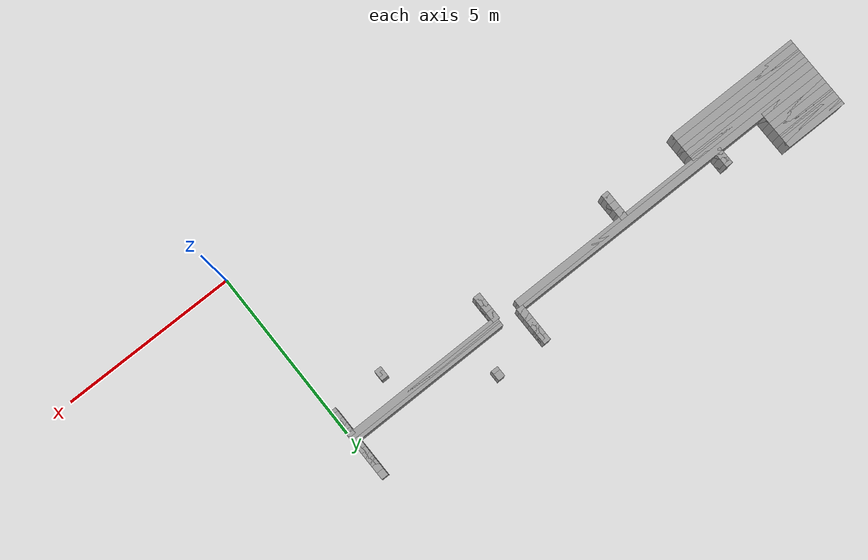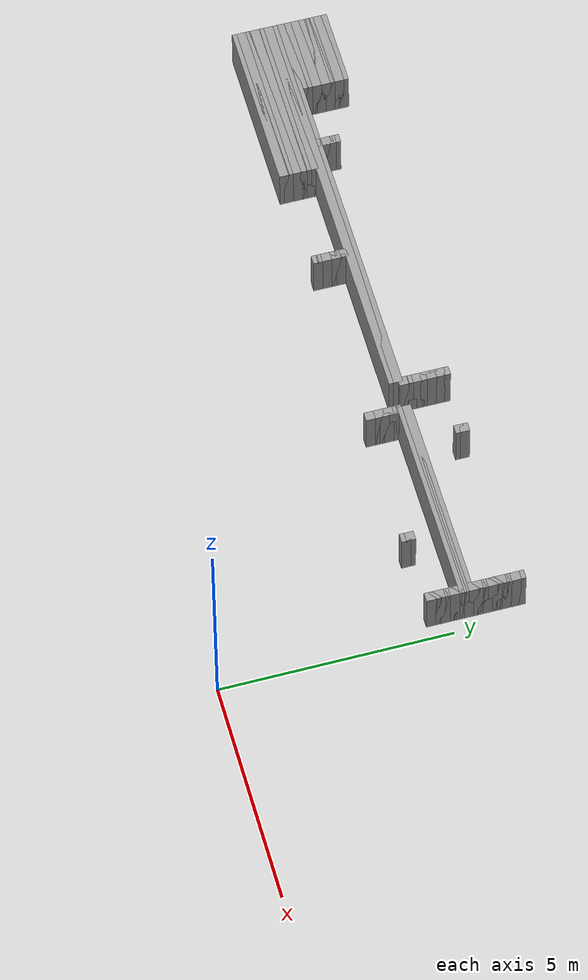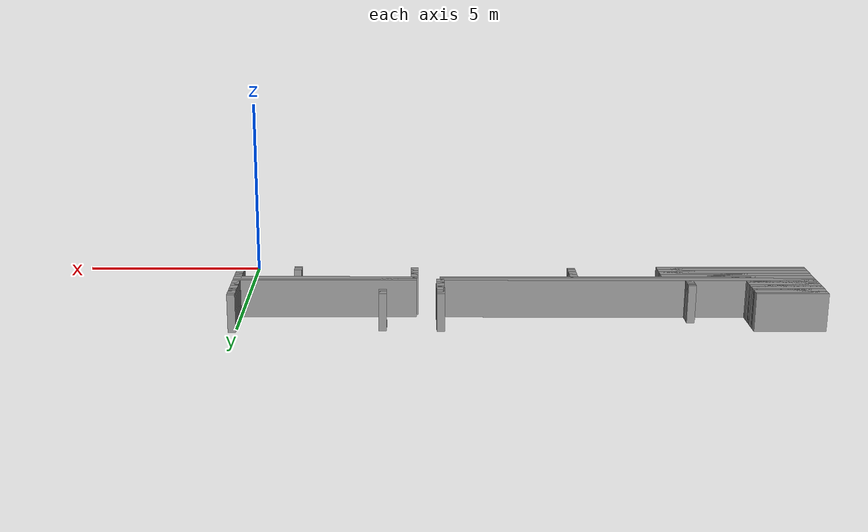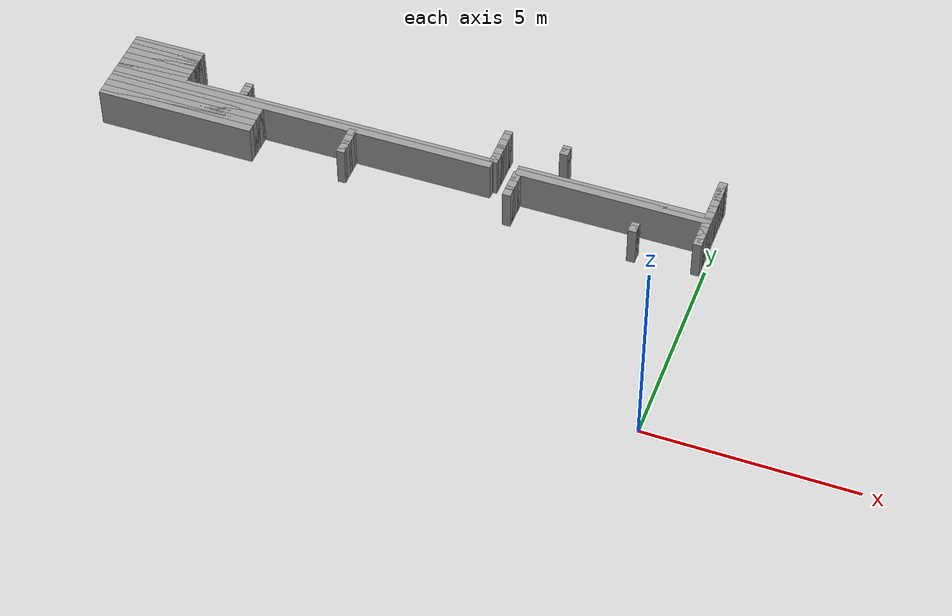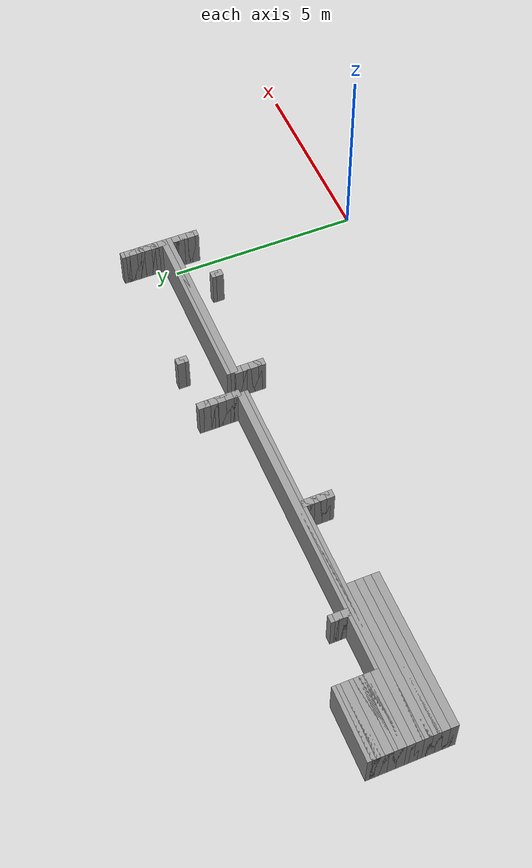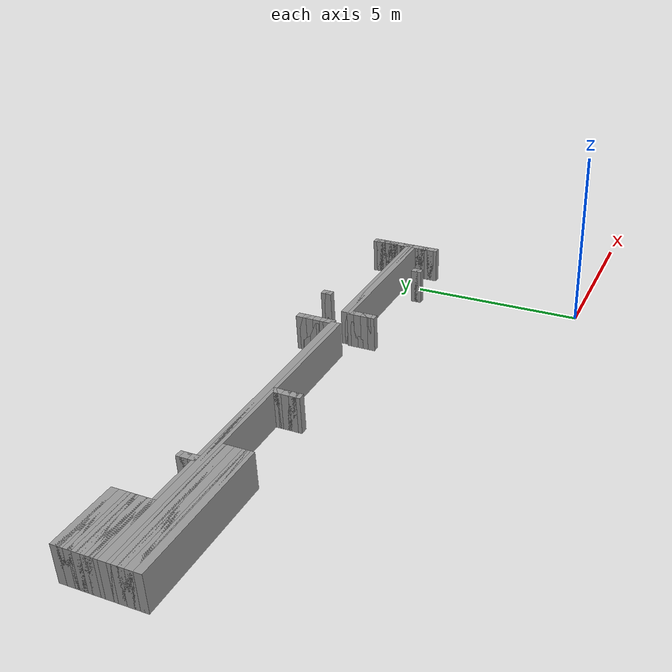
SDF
<sdf version="1.6">
 <world name="GridMap">
  <model name="GridMap">
   <link name="Wall_(16.0,44.0)">
    <collision name="Wall_(16.0,44.0)_Collision">
     <geometry><box><size>0.2 0.2 1.0</size></box></geometry>
     <pose>-1.6 4.4 0.5 0 -0 0</pose>
    </collision>
    <visual name="Wall_(16.0,44.0)_Visual">
     <geometry><box><size>0.2 0.2 1.0</size></box></geometry>
     <pose>-1.6 4.4 0.5 0 -0 0</pose>
     <material>
      <script><uri>file://media/materials/scripts/gazebo.material</uri><name>Gazebo/Grey</name></script>
      <ambient>1 1 1 1</ambient>
     </material>
     <meta><layer>0</layer></meta>
    </visual>
    <pose>0 0 0.5 0 -0 0</pose>
   </link>
   <link name="Wall_(129.5,44.0)">
    <collision name="Wall_(129.5,44.0)_Collision">
     <geometry><box><size>3.9000000000000004 0.2 1.0</size></box></geometry>
     <pose>-12.950000000000001 4.4 0.5 0 -0 0</pose>
    </collision>
    <visual name="Wall_(129.5,44.0)_Visual">
     <geometry><box><size>3.9000000000000004 0.2 1.0</size></box></geometry>
     <pose>-12.950000000000001 4.4 0.5 0 -0 0</pose>
     <material>
      <script><uri>file://media/materials/scripts/gazebo.material</uri><name>Gazebo/Grey</name></script>
      <ambient>1 1 1 1</ambient>
     </material>
     <meta><layer>0</layer></meta>
    </visual>
    <pose>0 0 0.5 0 -0 0</pose>
   </link>
   <link name="Wall_(1.0,45.0)">
    <collision name="Wall_(1.0,45.0)_Collision">
     <geometry><box><size>0.2 0.2 1.0</size></box></geometry>
     <pose>-0.1 4.5 0.5 0 -0 0</pose>
    </collision>
    <visual name="Wall_(1.0,45.0)_Visual">
     <geometry><box><size>0.2 0.2 1.0</size></box></geometry>
     <pose>-0.1 4.5 0.5 0 -0 0</pose>
     <material>
      <script><uri>file://media/materials/scripts/gazebo.material</uri><name>Gazebo/Grey</name></script>
      <ambient>1 1 1 1</ambient>
     </material>
     <meta><layer>0</layer></meta>
    </visual>
    <pose>0 0 0.5 0 -0 0</pose>
   </link>
   <link name="Wall_(16.0,45.0)">
    <collision name="Wall_(16.0,45.0)_Collision">
     <geometry><box><size>0.2 0.2 1.0</size></box></geometry>
     <pose>-1.6 4.5 0.5 0 -0 0</pose>
    </collision>
    <visual name="Wall_(16.0,45.0)_Visual">
     <geometry><box><size>0.2 0.2 1.0</size></box></geometry>
     <pose>-1.6 4.5 0.5 0 -0 0</pose>
     <material>
      <script><uri>file://media/materials/scripts/gazebo.material</uri><name>Gazebo/Grey</name></script>
      <ambient>1 1 1 1</ambient>
     </material>
     <meta><layer>0</layer></meta>
    </visual>
    <pose>0 0 0.5 0 -0 0</pose>
   </link>
   <link name="Wall_(46.5,45.0)">
    <collision name="Wall_(46.5,45.0)_Collision">
     <geometry><box><size>0.2 0.2 1.0</size></box></geometry>
     <pose>-4.65 4.5 0.5 0 -0 0</pose>
    </collision>
    <visual name="Wall_(46.5,45.0)_Visual">
     <geometry><box><size>0.2 0.2 1.0</size></box></geometry>
     <pose>-4.65 4.5 0.5 0 -0 0</pose>
     <material>
      <script><uri>file://media/materials/scripts/gazebo.material</uri><name>Gazebo/Grey</name></script>
      <ambient>1 1 1 1</ambient>
     </material>
     <meta><layer>0</layer></meta>
    </visual>
    <pose>0 0 0.5 0 -0 0</pose>
   </link>
   <link name="Wall_(87.5,45.0)">
    <collision name="Wall_(87.5,45.0)_Collision">
     <geometry><box><size>0.2 0.2 1.0</size></box></geometry>
     <pose>-8.75 4.5 0.5 0 -0 0</pose>
    </collision>
    <visual name="Wall_(87.5,45.0)_Visual">
     <geometry><box><size>0.2 0.2 1.0</size></box></geometry>
     <pose>-8.75 4.5 0.5 0 -0 0</pose>
     <material>
      <script><uri>file://media/materials/scripts/gazebo.material</uri><name>Gazebo/Grey</name></script>
      <ambient>1 1 1 1</ambient>
     </material>
     <meta><layer>0</layer></meta>
    </visual>
    <pose>0 0 0.5 0 -0 0</pose>
   </link>
   <link name="Wall_(129.5,45.0)">
    <collision name="Wall_(129.5,45.0)_Collision">
     <geometry><box><size>3.9000000000000004 0.2 1.0</size></box></geometry>
     <pose>-12.950000000000001 4.5 0.5 0 -0 0</pose>
    </collision>
    <visual name="Wall_(129.5,45.0)_Visual">
     <geometry><box><size>3.9000000000000004 0.2 1.0</size></box></geometry>
     <pose>-12.950000000000001 4.5 0.5 0 -0 0</pose>
     <material>
      <script><uri>file://media/materials/scripts/gazebo.material</uri><name>Gazebo/Grey</name></script>
      <ambient>1 1 1 1</ambient>
     </material>
     <meta><layer>0</layer></meta>
    </visual>
    <pose>0 0 0.5 0 -0 0</pose>
   </link>
   <link name="Wall_(1.0,46.0)">
    <collision name="Wall_(1.0,46.0)_Collision">
     <geometry><box><size>0.2 0.2 1.0</size></box></geometry>
     <pose>-0.1 4.6000000000000005 0.5 0 -0 0</pose>
    </collision>
    <visual name="Wall_(1.0,46.0)_Visual">
     <geometry><box><size>0.2 0.2 1.0</size></box></geometry>
     <pose>-0.1 4.6000000000000005 0.5 0 -0 0</pose>
     <material>
      <script><uri>file://media/materials/scripts/gazebo.material</uri><name>Gazebo/Grey</name></script>
      <ambient>1 1 1 1</ambient>
     </material>
     <meta><layer>0</layer></meta>
    </visual>
    <pose>0 0 0.5 0 -0 0</pose>
   </link>
   <link name="Wall_(46.5,46.0)">
    <collision name="Wall_(46.5,46.0)_Collision">
     <geometry><box><size>0.2 0.2 1.0</size></box></geometry>
     <pose>-4.65 4.6000000000000005 0.5 0 -0 0</pose>
    </collision>
    <visual name="Wall_(46.5,46.0)_Visual">
     <geometry><box><size>0.2 0.2 1.0</size></box></geometry>
     <pose>-4.65 4.6000000000000005 0.5 0 -0 0</pose>
     <material>
      <script><uri>file://media/materials/scripts/gazebo.material</uri><name>Gazebo/Grey</name></script>
      <ambient>1 1 1 1</ambient>
     </material>
     <meta><layer>0</layer></meta>
    </visual>
    <pose>0 0 0.5 0 -0 0</pose>
   </link>
   <link name="Wall_(87.5,46.0)">
    <collision name="Wall_(87.5,46.0)_Collision">
     <geometry><box><size>0.2 0.2 1.0</size></box></geometry>
     <pose>-8.75 4.6000000000000005 0.5 0 -0 0</pose>
    </collision>
    <visual name="Wall_(87.5,46.0)_Visual">
     <geometry><box><size>0.2 0.2 1.0</size></box></geometry>
     <pose>-8.75 4.6000000000000005 0.5 0 -0 0</pose>
     <material>
      <script><uri>file://media/materials/scripts/gazebo.material</uri><name>Gazebo/Grey</name></script>
      <ambient>1 1 1 1</ambient>
     </material>
     <meta><layer>0</layer></meta>
    </visual>
    <pose>0 0 0.5 0 -0 0</pose>
   </link>
   <link name="Wall_(129.5,46.0)">
    <collision name="Wall_(129.5,46.0)_Collision">
     <geometry><box><size>3.9000000000000004 0.2 1.0</size></box></geometry>
     <pose>-12.950000000000001 4.6000000000000005 0.5 0 -0 0</pose>
    </collision>
    <visual name="Wall_(129.5,46.0)_Visual">
     <geometry><box><size>3.9000000000000004 0.2 1.0</size></box></geometry>
     <pose>-12.950000000000001 4.6000000000000005 0.5 0 -0 0</pose>
     <material>
      <script><uri>file://media/materials/scripts/gazebo.material</uri><name>Gazebo/Grey</name></script>
      <ambient>1 1 1 1</ambient>
     </material>
     <meta><layer>0</layer></meta>
    </visual>
    <pose>0 0 0.5 0 -0 0</pose>
   </link>
   <link name="Wall_(1.0,47.0)">
    <collision name="Wall_(1.0,47.0)_Collision">
     <geometry><box><size>0.2 0.2 1.0</size></box></geometry>
     <pose>-0.1 4.7 0.5 0 -0 0</pose>
    </collision>
    <visual name="Wall_(1.0,47.0)_Visual">
     <geometry><box><size>0.2 0.2 1.0</size></box></geometry>
     <pose>-0.1 4.7 0.5 0 -0 0</pose>
     <material>
      <script><uri>file://media/materials/scripts/gazebo.material</uri><name>Gazebo/Grey</name></script>
      <ambient>1 1 1 1</ambient>
     </material>
     <meta><layer>0</layer></meta>
    </visual>
    <pose>0 0 0.5 0 -0 0</pose>
   </link>
   <link name="Wall_(46.5,47.0)">
    <collision name="Wall_(46.5,47.0)_Collision">
     <geometry><box><size>0.2 0.2 1.0</size></box></geometry>
     <pose>-4.65 4.7 0.5 0 -0 0</pose>
    </collision>
    <visual name="Wall_(46.5,47.0)_Visual">
     <geometry><box><size>0.2 0.2 1.0</size></box></geometry>
     <pose>-4.65 4.7 0.5 0 -0 0</pose>
     <material>
      <script><uri>file://media/materials/scripts/gazebo.material</uri><name>Gazebo/Grey</name></script>
      <ambient>1 1 1 1</ambient>
     </material>
     <meta><layer>0</layer></meta>
    </visual>
    <pose>0 0 0.5 0 -0 0</pose>
   </link>
   <link name="Wall_(87.5,47.0)">
    <collision name="Wall_(87.5,47.0)_Collision">
     <geometry><box><size>0.2 0.2 1.0</size></box></geometry>
     <pose>-8.75 4.7 0.5 0 -0 0</pose>
    </collision>
    <visual name="Wall_(87.5,47.0)_Visual">
     <geometry><box><size>0.2 0.2 1.0</size></box></geometry>
     <pose>-8.75 4.7 0.5 0 -0 0</pose>
     <material>
      <script><uri>file://media/materials/scripts/gazebo.material</uri><name>Gazebo/Grey</name></script>
      <ambient>1 1 1 1</ambient>
     </material>
     <meta><layer>0</layer></meta>
    </visual>
    <pose>0 0 0.5 0 -0 0</pose>
   </link>
   <link name="Wall_(129.5,47.0)">
    <collision name="Wall_(129.5,47.0)_Collision">
     <geometry><box><size>3.9000000000000004 0.2 1.0</size></box></geometry>
     <pose>-12.950000000000001 4.7 0.5 0 -0 0</pose>
    </collision>
    <visual name="Wall_(129.5,47.0)_Visual">
     <geometry><box><size>3.9000000000000004 0.2 1.0</size></box></geometry>
     <pose>-12.950000000000001 4.7 0.5 0 -0 0</pose>
     <material>
      <script><uri>file://media/materials/scripts/gazebo.material</uri><name>Gazebo/Grey</name></script>
      <ambient>1 1 1 1</ambient>
     </material>
     <meta><layer>0</layer></meta>
    </visual>
    <pose>0 0 0.5 0 -0 0</pose>
   </link>
   <link name="Wall_(1.0,48.0)">
    <collision name="Wall_(1.0,48.0)_Collision">
     <geometry><box><size>0.2 0.2 1.0</size></box></geometry>
     <pose>-0.1 4.800000000000001 0.5 0 -0 0</pose>
    </collision>
    <visual name="Wall_(1.0,48.0)_Visual">
     <geometry><box><size>0.2 0.2 1.0</size></box></geometry>
     <pose>-0.1 4.800000000000001 0.5 0 -0 0</pose>
     <material>
      <script><uri>file://media/materials/scripts/gazebo.material</uri><name>Gazebo/Grey</name></script>
      <ambient>1 1 1 1</ambient>
     </material>
     <meta><layer>0</layer></meta>
    </visual>
    <pose>0 0 0.5 0 -0 0</pose>
   </link>
   <link name="Wall_(46.5,48.0)">
    <collision name="Wall_(46.5,48.0)_Collision">
     <geometry><box><size>0.2 0.2 1.0</size></box></geometry>
     <pose>-4.65 4.800000000000001 0.5 0 -0 0</pose>
    </collision>
    <visual name="Wall_(46.5,48.0)_Visual">
     <geometry><box><size>0.2 0.2 1.0</size></box></geometry>
     <pose>-4.65 4.800000000000001 0.5 0 -0 0</pose>
     <material>
      <script><uri>file://media/materials/scripts/gazebo.material</uri><name>Gazebo/Grey</name></script>
      <ambient>1 1 1 1</ambient>
     </material>
     <meta><layer>0</layer></meta>
    </visual>
    <pose>0 0 0.5 0 -0 0</pose>
   </link>
   <link name="Wall_(87.5,48.0)">
    <collision name="Wall_(87.5,48.0)_Collision">
     <geometry><box><size>0.2 0.2 1.0</size></box></geometry>
     <pose>-8.75 4.800000000000001 0.5 0 -0 0</pose>
    </collision>
    <visual name="Wall_(87.5,48.0)_Visual">
     <geometry><box><size>0.2 0.2 1.0</size></box></geometry>
     <pose>-8.75 4.800000000000001 0.5 0 -0 0</pose>
     <material>
      <script><uri>file://media/materials/scripts/gazebo.material</uri><name>Gazebo/Grey</name></script>
      <ambient>1 1 1 1</ambient>
     </material>
     <meta><layer>0</layer></meta>
    </visual>
    <pose>0 0 0.5 0 -0 0</pose>
   </link>
   <link name="Wall_(129.5,48.0)">
    <collision name="Wall_(129.5,48.0)_Collision">
     <geometry><box><size>3.9000000000000004 0.2 1.0</size></box></geometry>
     <pose>-12.950000000000001 4.800000000000001 0.5 0 -0 0</pose>
    </collision>
    <visual name="Wall_(129.5,48.0)_Visual">
     <geometry><box><size>3.9000000000000004 0.2 1.0</size></box></geometry>
     <pose>-12.950000000000001 4.800000000000001 0.5 0 -0 0</pose>
     <material>
      <script><uri>file://media/materials/scripts/gazebo.material</uri><name>Gazebo/Grey</name></script>
      <ambient>1 1 1 1</ambient>
     </material>
     <meta><layer>0</layer></meta>
    </visual>
    <pose>0 0 0.5 0 -0 0</pose>
   </link>
   <link name="Wall_(1.0,49.0)">
    <collision name="Wall_(1.0,49.0)_Collision">
     <geometry><box><size>0.2 0.2 1.0</size></box></geometry>
     <pose>-0.1 4.9 0.5 0 -0 0</pose>
    </collision>
    <visual name="Wall_(1.0,49.0)_Visual">
     <geometry><box><size>0.2 0.2 1.0</size></box></geometry>
     <pose>-0.1 4.9 0.5 0 -0 0</pose>
     <material>
      <script><uri>file://media/materials/scripts/gazebo.material</uri><name>Gazebo/Grey</name></script>
      <ambient>1 1 1 1</ambient>
     </material>
     <meta><layer>0</layer></meta>
    </visual>
    <pose>0 0 0.5 0 -0 0</pose>
   </link>
   <link name="Wall_(46.5,49.0)">
    <collision name="Wall_(46.5,49.0)_Collision">
     <geometry><box><size>0.2 0.2 1.0</size></box></geometry>
     <pose>-4.65 4.9 0.5 0 -0 0</pose>
    </collision>
    <visual name="Wall_(46.5,49.0)_Visual">
     <geometry><box><size>0.2 0.2 1.0</size></box></geometry>
     <pose>-4.65 4.9 0.5 0 -0 0</pose>
     <material>
      <script><uri>file://media/materials/scripts/gazebo.material</uri><name>Gazebo/Grey</name></script>
      <ambient>1 1 1 1</ambient>
     </material>
     <meta><layer>0</layer></meta>
    </visual>
    <pose>0 0 0.5 0 -0 0</pose>
   </link>
   <link name="Wall_(87.5,49.0)">
    <collision name="Wall_(87.5,49.0)_Collision">
     <geometry><box><size>0.2 0.2 1.0</size></box></geometry>
     <pose>-8.75 4.9 0.5 0 -0 0</pose>
    </collision>
    <visual name="Wall_(87.5,49.0)_Visual">
     <geometry><box><size>0.2 0.2 1.0</size></box></geometry>
     <pose>-8.75 4.9 0.5 0 -0 0</pose>
     <material>
      <script><uri>file://media/materials/scripts/gazebo.material</uri><name>Gazebo/Grey</name></script>
      <ambient>1 1 1 1</ambient>
     </material>
     <meta><layer>0</layer></meta>
    </visual>
    <pose>0 0 0.5 0 -0 0</pose>
   </link>
   <link name="Wall_(129.5,49.0)">
    <collision name="Wall_(129.5,49.0)_Collision">
     <geometry><box><size>3.9000000000000004 0.2 1.0</size></box></geometry>
     <pose>-12.950000000000001 4.9 0.5 0 -0 0</pose>
    </collision>
    <visual name="Wall_(129.5,49.0)_Visual">
     <geometry><box><size>3.9000000000000004 0.2 1.0</size></box></geometry>
     <pose>-12.950000000000001 4.9 0.5 0 -0 0</pose>
     <material>
      <script><uri>file://media/materials/scripts/gazebo.material</uri><name>Gazebo/Grey</name></script>
      <ambient>1 1 1 1</ambient>
     </material>
     <meta><layer>0</layer></meta>
    </visual>
    <pose>0 0 0.5 0 -0 0</pose>
   </link>
   <link name="Wall_(1.0,50.0)">
    <collision name="Wall_(1.0,50.0)_Collision">
     <geometry><box><size>0.2 0.2 1.0</size></box></geometry>
     <pose>-0.1 5.0 0.5 0 -0 0</pose>
    </collision>
    <visual name="Wall_(1.0,50.0)_Visual">
     <geometry><box><size>0.2 0.2 1.0</size></box></geometry>
     <pose>-0.1 5.0 0.5 0 -0 0</pose>
     <material>
      <script><uri>file://media/materials/scripts/gazebo.material</uri><name>Gazebo/Grey</name></script>
      <ambient>1 1 1 1</ambient>
     </material>
     <meta><layer>0</layer></meta>
    </visual>
    <pose>0 0 0.5 0 -0 0</pose>
   </link>
   <link name="Wall_(46.5,50.0)">
    <collision name="Wall_(46.5,50.0)_Collision">
     <geometry><box><size>0.2 0.2 1.0</size></box></geometry>
     <pose>-4.65 5.0 0.5 0 -0 0</pose>
    </collision>
    <visual name="Wall_(46.5,50.0)_Visual">
     <geometry><box><size>0.2 0.2 1.0</size></box></geometry>
     <pose>-4.65 5.0 0.5 0 -0 0</pose>
     <material>
      <script><uri>file://media/materials/scripts/gazebo.material</uri><name>Gazebo/Grey</name></script>
      <ambient>1 1 1 1</ambient>
     </material>
     <meta><layer>0</layer></meta>
    </visual>
    <pose>0 0 0.5 0 -0 0</pose>
   </link>
   <link name="Wall_(87.5,50.0)">
    <collision name="Wall_(87.5,50.0)_Collision">
     <geometry><box><size>0.2 0.2 1.0</size></box></geometry>
     <pose>-8.75 5.0 0.5 0 -0 0</pose>
    </collision>
    <visual name="Wall_(87.5,50.0)_Visual">
     <geometry><box><size>0.2 0.2 1.0</size></box></geometry>
     <pose>-8.75 5.0 0.5 0 -0 0</pose>
     <material>
      <script><uri>file://media/materials/scripts/gazebo.material</uri><name>Gazebo/Grey</name></script>
      <ambient>1 1 1 1</ambient>
     </material>
     <meta><layer>0</layer></meta>
    </visual>
    <pose>0 0 0.5 0 -0 0</pose>
   </link>
   <link name="Wall_(129.5,50.0)">
    <collision name="Wall_(129.5,50.0)_Collision">
     <geometry><box><size>3.9000000000000004 0.2 1.0</size></box></geometry>
     <pose>-12.950000000000001 5.0 0.5 0 -0 0</pose>
    </collision>
    <visual name="Wall_(129.5,50.0)_Visual">
     <geometry><box><size>3.9000000000000004 0.2 1.0</size></box></geometry>
     <pose>-12.950000000000001 5.0 0.5 0 -0 0</pose>
     <material>
      <script><uri>file://media/materials/scripts/gazebo.material</uri><name>Gazebo/Grey</name></script>
      <ambient>1 1 1 1</ambient>
     </material>
     <meta><layer>0</layer></meta>
    </visual>
    <pose>0 0 0.5 0 -0 0</pose>
   </link>
   <link name="Wall_(1.0,51.0)">
    <collision name="Wall_(1.0,51.0)_Collision">
     <geometry><box><size>0.2 0.2 1.0</size></box></geometry>
     <pose>-0.1 5.1000000000000005 0.5 0 -0 0</pose>
    </collision>
    <visual name="Wall_(1.0,51.0)_Visual">
     <geometry><box><size>0.2 0.2 1.0</size></box></geometry>
     <pose>-0.1 5.1000000000000005 0.5 0 -0 0</pose>
     <material>
      <script><uri>file://media/materials/scripts/gazebo.material</uri><name>Gazebo/Grey</name></script>
      <ambient>1 1 1 1</ambient>
     </material>
     <meta><layer>0</layer></meta>
    </visual>
    <pose>0 0 0.5 0 -0 0</pose>
   </link>
   <link name="Wall_(46.5,51.0)">
    <collision name="Wall_(46.5,51.0)_Collision">
     <geometry><box><size>0.2 0.2 1.0</size></box></geometry>
     <pose>-4.65 5.1000000000000005 0.5 0 -0 0</pose>
    </collision>
    <visual name="Wall_(46.5,51.0)_Visual">
     <geometry><box><size>0.2 0.2 1.0</size></box></geometry>
     <pose>-4.65 5.1000000000000005 0.5 0 -0 0</pose>
     <material>
      <script><uri>file://media/materials/scripts/gazebo.material</uri><name>Gazebo/Grey</name></script>
      <ambient>1 1 1 1</ambient>
     </material>
     <meta><layer>0</layer></meta>
    </visual>
    <pose>0 0 0.5 0 -0 0</pose>
   </link>
   <link name="Wall_(87.5,51.0)">
    <collision name="Wall_(87.5,51.0)_Collision">
     <geometry><box><size>0.2 0.2 1.0</size></box></geometry>
     <pose>-8.75 5.1000000000000005 0.5 0 -0 0</pose>
    </collision>
    <visual name="Wall_(87.5,51.0)_Visual">
     <geometry><box><size>0.2 0.2 1.0</size></box></geometry>
     <pose>-8.75 5.1000000000000005 0.5 0 -0 0</pose>
     <material>
      <script><uri>file://media/materials/scripts/gazebo.material</uri><name>Gazebo/Grey</name></script>
      <ambient>1 1 1 1</ambient>
     </material>
     <meta><layer>0</layer></meta>
    </visual>
    <pose>0 0 0.5 0 -0 0</pose>
   </link>
   <link name="Wall_(129.5,51.0)">
    <collision name="Wall_(129.5,51.0)_Collision">
     <geometry><box><size>3.9000000000000004 0.2 1.0</size></box></geometry>
     <pose>-12.950000000000001 5.1000000000000005 0.5 0 -0 0</pose>
    </collision>
    <visual name="Wall_(129.5,51.0)_Visual">
     <geometry><box><size>3.9000000000000004 0.2 1.0</size></box></geometry>
     <pose>-12.950000000000001 5.1000000000000005 0.5 0 -0 0</pose>
     <material>
      <script><uri>file://media/materials/scripts/gazebo.material</uri><name>Gazebo/Grey</name></script>
      <ambient>1 1 1 1</ambient>
     </material>
     <meta><layer>0</layer></meta>
    </visual>
    <pose>0 0 0.5 0 -0 0</pose>
   </link>
   <link name="Wall_(23.5,52.0)">
    <collision name="Wall_(23.5,52.0)_Collision">
     <geometry><box><size>4.7 0.2 1.0</size></box></geometry>
     <pose>-2.35 5.2 0.5 0 -0 0</pose>
    </collision>
    <visual name="Wall_(23.5,52.0)_Visual">
     <geometry><box><size>4.7 0.2 1.0</size></box></geometry>
     <pose>-2.35 5.2 0.5 0 -0 0</pose>
     <material>
      <script><uri>file://media/materials/scripts/gazebo.material</uri><name>Gazebo/Grey</name></script>
      <ambient>1 1 1 1</ambient>
     </material>
     <meta><layer>0</layer></meta>
    </visual>
    <pose>0 0 0.5 0 -0 0</pose>
   </link>
   <link name="Wall_(101.0,52.0)">
    <collision name="Wall_(101.0,52.0)_Collision">
     <geometry><box><size>9.600000000000001 0.2 1.0</size></box></geometry>
     <pose>-10.100000000000001 5.2 0.5 0 -0 0</pose>
    </collision>
    <visual name="Wall_(101.0,52.0)_Visual">
     <geometry><box><size>9.600000000000001 0.2 1.0</size></box></geometry>
     <pose>-10.100000000000001 5.2 0.5 0 -0 0</pose>
     <material>
      <script><uri>file://media/materials/scripts/gazebo.material</uri><name>Gazebo/Grey</name></script>
      <ambient>1 1 1 1</ambient>
     </material>
     <meta><layer>0</layer></meta>
    </visual>
    <pose>0 0 0.5 0 -0 0</pose>
   </link>
   <link name="Wall_(23.5,53.0)">
    <collision name="Wall_(23.5,53.0)_Collision">
     <geometry><box><size>4.7 0.2 1.0</size></box></geometry>
     <pose>-2.35 5.300000000000001 0.5 0 -0 0</pose>
    </collision>
    <visual name="Wall_(23.5,53.0)_Visual">
     <geometry><box><size>4.7 0.2 1.0</size></box></geometry>
     <pose>-2.35 5.300000000000001 0.5 0 -0 0</pose>
     <material>
      <script><uri>file://media/materials/scripts/gazebo.material</uri><name>Gazebo/Grey</name></script>
      <ambient>1 1 1 1</ambient>
     </material>
     <meta><layer>0</layer></meta>
    </visual>
    <pose>0 0 0.5 0 -0 0</pose>
   </link>
   <link name="Wall_(101.0,53.0)">
    <collision name="Wall_(101.0,53.0)_Collision">
     <geometry><box><size>9.600000000000001 0.2 1.0</size></box></geometry>
     <pose>-10.100000000000001 5.300000000000001 0.5 0 -0 0</pose>
    </collision>
    <visual name="Wall_(101.0,53.0)_Visual">
     <geometry><box><size>9.600000000000001 0.2 1.0</size></box></geometry>
     <pose>-10.100000000000001 5.300000000000001 0.5 0 -0 0</pose>
     <material>
      <script><uri>file://media/materials/scripts/gazebo.material</uri><name>Gazebo/Grey</name></script>
      <ambient>1 1 1 1</ambient>
     </material>
     <meta><layer>0</layer></meta>
    </visual>
    <pose>0 0 0.5 0 -0 0</pose>
   </link>
   <link name="Wall_(1.0,54.0)">
    <collision name="Wall_(1.0,54.0)_Collision">
     <geometry><box><size>0.2 0.2 1.0</size></box></geometry>
     <pose>-0.1 5.4 0.5 0 -0 0</pose>
    </collision>
    <visual name="Wall_(1.0,54.0)_Visual">
     <geometry><box><size>0.2 0.2 1.0</size></box></geometry>
     <pose>-0.1 5.4 0.5 0 -0 0</pose>
     <material>
      <script><uri>file://media/materials/scripts/gazebo.material</uri><name>Gazebo/Grey</name></script>
      <ambient>1 1 1 1</ambient>
     </material>
     <meta><layer>0</layer></meta>
    </visual>
    <pose>0 0 0.5 0 -0 0</pose>
   </link>
   <link name="Wall_(53.0,54.0)">
    <collision name="Wall_(53.0,54.0)_Collision">
     <geometry><box><size>0.2 0.2 1.0</size></box></geometry>
     <pose>-5.300000000000001 5.4 0.5 0 -0 0</pose>
    </collision>
    <visual name="Wall_(53.0,54.0)_Visual">
     <geometry><box><size>0.2 0.2 1.0</size></box></geometry>
     <pose>-5.300000000000001 5.4 0.5 0 -0 0</pose>
     <material>
      <script><uri>file://media/materials/scripts/gazebo.material</uri><name>Gazebo/Grey</name></script>
      <ambient>1 1 1 1</ambient>
     </material>
     <meta><layer>0</layer></meta>
    </visual>
    <pose>0 0 0.5 0 -0 0</pose>
   </link>
   <link name="Wall_(116.5,54.0)">
    <collision name="Wall_(116.5,54.0)_Collision">
     <geometry><box><size>0.2 0.2 1.0</size></box></geometry>
     <pose>-11.65 5.4 0.5 0 -0 0</pose>
    </collision>
    <visual name="Wall_(116.5,54.0)_Visual">
     <geometry><box><size>0.2 0.2 1.0</size></box></geometry>
     <pose>-11.65 5.4 0.5 0 -0 0</pose>
     <material>
      <script><uri>file://media/materials/scripts/gazebo.material</uri><name>Gazebo/Grey</name></script>
      <ambient>1 1 1 1</ambient>
     </material>
     <meta><layer>0</layer></meta>
    </visual>
    <pose>0 0 0.5 0 -0 0</pose>
   </link>
   <link name="Wall_(140.0,54.0)">
    <collision name="Wall_(140.0,54.0)_Collision">
     <geometry><box><size>1.8 0.2 1.0</size></box></geometry>
     <pose>-14.0 5.4 0.5 0 -0 0</pose>
    </collision>
    <visual name="Wall_(140.0,54.0)_Visual">
     <geometry><box><size>1.8 0.2 1.0</size></box></geometry>
     <pose>-14.0 5.4 0.5 0 -0 0</pose>
     <material>
      <script><uri>file://media/materials/scripts/gazebo.material</uri><name>Gazebo/Grey</name></script>
      <ambient>1 1 1 1</ambient>
     </material>
     <meta><layer>0</layer></meta>
    </visual>
    <pose>0 0 0.5 0 -0 0</pose>
   </link>
   <link name="Wall_(1.0,55.0)">
    <collision name="Wall_(1.0,55.0)_Collision">
     <geometry><box><size>0.2 0.2 1.0</size></box></geometry>
     <pose>-0.1 5.5 0.5 0 -0 0</pose>
    </collision>
    <visual name="Wall_(1.0,55.0)_Visual">
     <geometry><box><size>0.2 0.2 1.0</size></box></geometry>
     <pose>-0.1 5.5 0.5 0 -0 0</pose>
     <material>
      <script><uri>file://media/materials/scripts/gazebo.material</uri><name>Gazebo/Grey</name></script>
      <ambient>1 1 1 1</ambient>
     </material>
     <meta><layer>0</layer></meta>
    </visual>
    <pose>0 0 0.5 0 -0 0</pose>
   </link>
   <link name="Wall_(53.0,55.0)">
    <collision name="Wall_(53.0,55.0)_Collision">
     <geometry><box><size>0.2 0.2 1.0</size></box></geometry>
     <pose>-5.300000000000001 5.5 0.5 0 -0 0</pose>
    </collision>
    <visual name="Wall_(53.0,55.0)_Visual">
     <geometry><box><size>0.2 0.2 1.0</size></box></geometry>
     <pose>-5.300000000000001 5.5 0.5 0 -0 0</pose>
     <material>
      <script><uri>file://media/materials/scripts/gazebo.material</uri><name>Gazebo/Grey</name></script>
      <ambient>1 1 1 1</ambient>
     </material>
     <meta><layer>0</layer></meta>
    </visual>
    <pose>0 0 0.5 0 -0 0</pose>
   </link>
   <link name="Wall_(116.5,55.0)">
    <collision name="Wall_(116.5,55.0)_Collision">
     <geometry><box><size>0.2 0.2 1.0</size></box></geometry>
     <pose>-11.65 5.5 0.5 0 -0 0</pose>
    </collision>
    <visual name="Wall_(116.5,55.0)_Visual">
     <geometry><box><size>0.2 0.2 1.0</size></box></geometry>
     <pose>-11.65 5.5 0.5 0 -0 0</pose>
     <material>
      <script><uri>file://media/materials/scripts/gazebo.material</uri><name>Gazebo/Grey</name></script>
      <ambient>1 1 1 1</ambient>
     </material>
     <meta><layer>0</layer></meta>
    </visual>
    <pose>0 0 0.5 0 -0 0</pose>
   </link>
   <link name="Wall_(140.0,55.0)">
    <collision name="Wall_(140.0,55.0)_Collision">
     <geometry><box><size>1.8 0.2 1.0</size></box></geometry>
     <pose>-14.0 5.5 0.5 0 -0 0</pose>
    </collision>
    <visual name="Wall_(140.0,55.0)_Visual">
     <geometry><box><size>1.8 0.2 1.0</size></box></geometry>
     <pose>-14.0 5.5 0.5 0 -0 0</pose>
     <material>
      <script><uri>file://media/materials/scripts/gazebo.material</uri><name>Gazebo/Grey</name></script>
      <ambient>1 1 1 1</ambient>
     </material>
     <meta><layer>0</layer></meta>
    </visual>
    <pose>0 0 0.5 0 -0 0</pose>
   </link>
   <link name="Wall_(1.0,56.0)">
    <collision name="Wall_(1.0,56.0)_Collision">
     <geometry><box><size>0.2 0.2 1.0</size></box></geometry>
     <pose>-0.1 5.6000000000000005 0.5 0 -0 0</pose>
    </collision>
    <visual name="Wall_(1.0,56.0)_Visual">
     <geometry><box><size>0.2 0.2 1.0</size></box></geometry>
     <pose>-0.1 5.6000000000000005 0.5 0 -0 0</pose>
     <material>
      <script><uri>file://media/materials/scripts/gazebo.material</uri><name>Gazebo/Grey</name></script>
      <ambient>1 1 1 1</ambient>
     </material>
     <meta><layer>0</layer></meta>
    </visual>
    <pose>0 0 0.5 0 -0 0</pose>
   </link>
   <link name="Wall_(53.0,56.0)">
    <collision name="Wall_(53.0,56.0)_Collision">
     <geometry><box><size>0.2 0.2 1.0</size></box></geometry>
     <pose>-5.300000000000001 5.6000000000000005 0.5 0 -0 0</pose>
    </collision>
    <visual name="Wall_(53.0,56.0)_Visual">
     <geometry><box><size>0.2 0.2 1.0</size></box></geometry>
     <pose>-5.300000000000001 5.6000000000000005 0.5 0 -0 0</pose>
     <material>
      <script><uri>file://media/materials/scripts/gazebo.material</uri><name>Gazebo/Grey</name></script>
      <ambient>1 1 1 1</ambient>
     </material>
     <meta><layer>0</layer></meta>
    </visual>
    <pose>0 0 0.5 0 -0 0</pose>
   </link>
   <link name="Wall_(116.5,56.0)">
    <collision name="Wall_(116.5,56.0)_Collision">
     <geometry><box><size>0.2 0.2 1.0</size></box></geometry>
     <pose>-11.65 5.6000000000000005 0.5 0 -0 0</pose>
    </collision>
    <visual name="Wall_(116.5,56.0)_Visual">
     <geometry><box><size>0.2 0.2 1.0</size></box></geometry>
     <pose>-11.65 5.6000000000000005 0.5 0 -0 0</pose>
     <material>
      <script><uri>file://media/materials/scripts/gazebo.material</uri><name>Gazebo/Grey</name></script>
      <ambient>1 1 1 1</ambient>
     </material>
     <meta><layer>0</layer></meta>
    </visual>
    <pose>0 0 0.5 0 -0 0</pose>
   </link>
   <link name="Wall_(140.0,56.0)">
    <collision name="Wall_(140.0,56.0)_Collision">
     <geometry><box><size>1.8 0.2 1.0</size></box></geometry>
     <pose>-14.0 5.6000000000000005 0.5 0 -0 0</pose>
    </collision>
    <visual name="Wall_(140.0,56.0)_Visual">
     <geometry><box><size>1.8 0.2 1.0</size></box></geometry>
     <pose>-14.0 5.6000000000000005 0.5 0 -0 0</pose>
     <material>
      <script><uri>file://media/materials/scripts/gazebo.material</uri><name>Gazebo/Grey</name></script>
      <ambient>1 1 1 1</ambient>
     </material>
     <meta><layer>0</layer></meta>
    </visual>
    <pose>0 0 0.5 0 -0 0</pose>
   </link>
   <link name="Wall_(1.0,57.0)">
    <collision name="Wall_(1.0,57.0)_Collision">
     <geometry><box><size>0.2 0.2 1.0</size></box></geometry>
     <pose>-0.1 5.7 0.5 0 -0 0</pose>
    </collision>
    <visual name="Wall_(1.0,57.0)_Visual">
     <geometry><box><size>0.2 0.2 1.0</size></box></geometry>
     <pose>-0.1 5.7 0.5 0 -0 0</pose>
     <material>
      <script><uri>file://media/materials/scripts/gazebo.material</uri><name>Gazebo/Grey</name></script>
      <ambient>1 1 1 1</ambient>
     </material>
     <meta><layer>0</layer></meta>
    </visual>
    <pose>0 0 0.5 0 -0 0</pose>
   </link>
   <link name="Wall_(53.0,57.0)">
    <collision name="Wall_(53.0,57.0)_Collision">
     <geometry><box><size>0.2 0.2 1.0</size></box></geometry>
     <pose>-5.300000000000001 5.7 0.5 0 -0 0</pose>
    </collision>
    <visual name="Wall_(53.0,57.0)_Visual">
     <geometry><box><size>0.2 0.2 1.0</size></box></geometry>
     <pose>-5.300000000000001 5.7 0.5 0 -0 0</pose>
     <material>
      <script><uri>file://media/materials/scripts/gazebo.material</uri><name>Gazebo/Grey</name></script>
      <ambient>1 1 1 1</ambient>
     </material>
     <meta><layer>0</layer></meta>
    </visual>
    <pose>0 0 0.5 0 -0 0</pose>
   </link>
   <link name="Wall_(116.5,57.0)">
    <collision name="Wall_(116.5,57.0)_Collision">
     <geometry><box><size>0.2 0.2 1.0</size></box></geometry>
     <pose>-11.65 5.7 0.5 0 -0 0</pose>
    </collision>
    <visual name="Wall_(116.5,57.0)_Visual">
     <geometry><box><size>0.2 0.2 1.0</size></box></geometry>
     <pose>-11.65 5.7 0.5 0 -0 0</pose>
     <material>
      <script><uri>file://media/materials/scripts/gazebo.material</uri><name>Gazebo/Grey</name></script>
      <ambient>1 1 1 1</ambient>
     </material>
     <meta><layer>0</layer></meta>
    </visual>
    <pose>0 0 0.5 0 -0 0</pose>
   </link>
   <link name="Wall_(140.0,57.0)">
    <collision name="Wall_(140.0,57.0)_Collision">
     <geometry><box><size>1.8 0.2 1.0</size></box></geometry>
     <pose>-14.0 5.7 0.5 0 -0 0</pose>
    </collision>
    <visual name="Wall_(140.0,57.0)_Visual">
     <geometry><box><size>1.8 0.2 1.0</size></box></geometry>
     <pose>-14.0 5.7 0.5 0 -0 0</pose>
     <material>
      <script><uri>file://media/materials/scripts/gazebo.material</uri><name>Gazebo/Grey</name></script>
      <ambient>1 1 1 1</ambient>
     </material>
     <meta><layer>0</layer></meta>
    </visual>
    <pose>0 0 0.5 0 -0 0</pose>
   </link>
   <link name="Wall_(1.0,58.0)">
    <collision name="Wall_(1.0,58.0)_Collision">
     <geometry><box><size>0.2 0.2 1.0</size></box></geometry>
     <pose>-0.1 5.800000000000001 0.5 0 -0 0</pose>
    </collision>
    <visual name="Wall_(1.0,58.0)_Visual">
     <geometry><box><size>0.2 0.2 1.0</size></box></geometry>
     <pose>-0.1 5.800000000000001 0.5 0 -0 0</pose>
     <material>
      <script><uri>file://media/materials/scripts/gazebo.material</uri><name>Gazebo/Grey</name></script>
      <ambient>1 1 1 1</ambient>
     </material>
     <meta><layer>0</layer></meta>
    </visual>
    <pose>0 0 0.5 0 -0 0</pose>
   </link>
   <link name="Wall_(53.0,58.0)">
    <collision name="Wall_(53.0,58.0)_Collision">
     <geometry><box><size>0.2 0.2 1.0</size></box></geometry>
     <pose>-5.300000000000001 5.800000000000001 0.5 0 -0 0</pose>
    </collision>
    <visual name="Wall_(53.0,58.0)_Visual">
     <geometry><box><size>0.2 0.2 1.0</size></box></geometry>
     <pose>-5.300000000000001 5.800000000000001 0.5 0 -0 0</pose>
     <material>
      <script><uri>file://media/materials/scripts/gazebo.material</uri><name>Gazebo/Grey</name></script>
      <ambient>1 1 1 1</ambient>
     </material>
     <meta><layer>0</layer></meta>
    </visual>
    <pose>0 0 0.5 0 -0 0</pose>
   </link>
   <link name="Wall_(140.0,58.0)">
    <collision name="Wall_(140.0,58.0)_Collision">
     <geometry><box><size>1.8 0.2 1.0</size></box></geometry>
     <pose>-14.0 5.800000000000001 0.5 0 -0 0</pose>
    </collision>
    <visual name="Wall_(140.0,58.0)_Visual">
     <geometry><box><size>1.8 0.2 1.0</size></box></geometry>
     <pose>-14.0 5.800000000000001 0.5 0 -0 0</pose>
     <material>
      <script><uri>file://media/materials/scripts/gazebo.material</uri><name>Gazebo/Grey</name></script>
      <ambient>1 1 1 1</ambient>
     </material>
     <meta><layer>0</layer></meta>
    </visual>
    <pose>0 0 0.5 0 -0 0</pose>
   </link>
   <link name="Wall_(1.0,59.0)">
    <collision name="Wall_(1.0,59.0)_Collision">
     <geometry><box><size>0.2 0.2 1.0</size></box></geometry>
     <pose>-0.1 5.9 0.5 0 -0 0</pose>
    </collision>
    <visual name="Wall_(1.0,59.0)_Visual">
     <geometry><box><size>0.2 0.2 1.0</size></box></geometry>
     <pose>-0.1 5.9 0.5 0 -0 0</pose>
     <material>
      <script><uri>file://media/materials/scripts/gazebo.material</uri><name>Gazebo/Grey</name></script>
      <ambient>1 1 1 1</ambient>
     </material>
     <meta><layer>0</layer></meta>
    </visual>
    <pose>0 0 0.5 0 -0 0</pose>
   </link>
   <link name="Wall_(53.0,59.0)">
    <collision name="Wall_(53.0,59.0)_Collision">
     <geometry><box><size>0.2 0.2 1.0</size></box></geometry>
     <pose>-5.300000000000001 5.9 0.5 0 -0 0</pose>
    </collision>
    <visual name="Wall_(53.0,59.0)_Visual">
     <geometry><box><size>0.2 0.2 1.0</size></box></geometry>
     <pose>-5.300000000000001 5.9 0.5 0 -0 0</pose>
     <material>
      <script><uri>file://media/materials/scripts/gazebo.material</uri><name>Gazebo/Grey</name></script>
      <ambient>1 1 1 1</ambient>
     </material>
     <meta><layer>0</layer></meta>
    </visual>
    <pose>0 0 0.5 0 -0 0</pose>
   </link>
   <link name="Wall_(140.0,59.0)">
    <collision name="Wall_(140.0,59.0)_Collision">
     <geometry><box><size>1.8 0.2 1.0</size></box></geometry>
     <pose>-14.0 5.9 0.5 0 -0 0</pose>
    </collision>
    <visual name="Wall_(140.0,59.0)_Visual">
     <geometry><box><size>1.8 0.2 1.0</size></box></geometry>
     <pose>-14.0 5.9 0.5 0 -0 0</pose>
     <material>
      <script><uri>file://media/materials/scripts/gazebo.material</uri><name>Gazebo/Grey</name></script>
      <ambient>1 1 1 1</ambient>
     </material>
     <meta><layer>0</layer></meta>
    </visual>
    <pose>0 0 0.5 0 -0 0</pose>
   </link>
   <link name="Wall_(1.0,60.0)">
    <collision name="Wall_(1.0,60.0)_Collision">
     <geometry><box><size>0.2 0.2 1.0</size></box></geometry>
     <pose>-0.1 6.0 0.5 0 -0 0</pose>
    </collision>
    <visual name="Wall_(1.0,60.0)_Visual">
     <geometry><box><size>0.2 0.2 1.0</size></box></geometry>
     <pose>-0.1 6.0 0.5 0 -0 0</pose>
     <material>
      <script><uri>file://media/materials/scripts/gazebo.material</uri><name>Gazebo/Grey</name></script>
      <ambient>1 1 1 1</ambient>
     </material>
     <meta><layer>0</layer></meta>
    </visual>
    <pose>0 0 0.5 0 -0 0</pose>
   </link>
   <link name="Wall_(53.0,60.0)">
    <collision name="Wall_(53.0,60.0)_Collision">
     <geometry><box><size>0.2 0.2 1.0</size></box></geometry>
     <pose>-5.300000000000001 6.0 0.5 0 -0 0</pose>
    </collision>
    <visual name="Wall_(53.0,60.0)_Visual">
     <geometry><box><size>0.2 0.2 1.0</size></box></geometry>
     <pose>-5.300000000000001 6.0 0.5 0 -0 0</pose>
     <material>
      <script><uri>file://media/materials/scripts/gazebo.material</uri><name>Gazebo/Grey</name></script>
      <ambient>1 1 1 1</ambient>
     </material>
     <meta><layer>0</layer></meta>
    </visual>
    <pose>0 0 0.5 0 -0 0</pose>
   </link>
   <link name="Wall_(140.0,60.0)">
    <collision name="Wall_(140.0,60.0)_Collision">
     <geometry><box><size>1.8 0.2 1.0</size></box></geometry>
     <pose>-14.0 6.0 0.5 0 -0 0</pose>
    </collision>
    <visual name="Wall_(140.0,60.0)_Visual">
     <geometry><box><size>1.8 0.2 1.0</size></box></geometry>
     <pose>-14.0 6.0 0.5 0 -0 0</pose>
     <material>
      <script><uri>file://media/materials/scripts/gazebo.material</uri><name>Gazebo/Grey</name></script>
      <ambient>1 1 1 1</ambient>
     </material>
     <meta><layer>0</layer></meta>
    </visual>
    <pose>0 0 0.5 0 -0 0</pose>
   </link>
   <link name="Wall_(1.0,61.0)">
    <collision name="Wall_(1.0,61.0)_Collision">
     <geometry><box><size>0.2 0.2 1.0</size></box></geometry>
     <pose>-0.1 6.1000000000000005 0.5 0 -0 0</pose>
    </collision>
    <visual name="Wall_(1.0,61.0)_Visual">
     <geometry><box><size>0.2 0.2 1.0</size></box></geometry>
     <pose>-0.1 6.1000000000000005 0.5 0 -0 0</pose>
     <material>
      <script><uri>file://media/materials/scripts/gazebo.material</uri><name>Gazebo/Grey</name></script>
      <ambient>1 1 1 1</ambient>
     </material>
     <meta><layer>0</layer></meta>
    </visual>
    <pose>0 0 0.5 0 -0 0</pose>
   </link>
   <link name="Wall_(53.0,61.0)">
    <collision name="Wall_(53.0,61.0)_Collision">
     <geometry><box><size>0.2 0.2 1.0</size></box></geometry>
     <pose>-5.300000000000001 6.1000000000000005 0.5 0 -0 0</pose>
    </collision>
    <visual name="Wall_(53.0,61.0)_Visual">
     <geometry><box><size>0.2 0.2 1.0</size></box></geometry>
     <pose>-5.300000000000001 6.1000000000000005 0.5 0 -0 0</pose>
     <material>
      <script><uri>file://media/materials/scripts/gazebo.material</uri><name>Gazebo/Grey</name></script>
      <ambient>1 1 1 1</ambient>
     </material>
     <meta><layer>0</layer></meta>
    </visual>
    <pose>0 0 0.5 0 -0 0</pose>
   </link>
   <link name="Wall_(140.0,61.0)">
    <collision name="Wall_(140.0,61.0)_Collision">
     <geometry><box><size>1.8 0.2 1.0</size></box></geometry>
     <pose>-14.0 6.1000000000000005 0.5 0 -0 0</pose>
    </collision>
    <visual name="Wall_(140.0,61.0)_Visual">
     <geometry><box><size>1.8 0.2 1.0</size></box></geometry>
     <pose>-14.0 6.1000000000000005 0.5 0 -0 0</pose>
     <material>
      <script><uri>file://media/materials/scripts/gazebo.material</uri><name>Gazebo/Grey</name></script>
      <ambient>1 1 1 1</ambient>
     </material>
     <meta><layer>0</layer></meta>
    </visual>
    <pose>0 0 0.5 0 -0 0</pose>
   </link>
   <link name="Wall_(1.0,62.0)">
    <collision name="Wall_(1.0,62.0)_Collision">
     <geometry><box><size>0.2 0.2 1.0</size></box></geometry>
     <pose>-0.1 6.2 0.5 0 -0 0</pose>
    </collision>
    <visual name="Wall_(1.0,62.0)_Visual">
     <geometry><box><size>0.2 0.2 1.0</size></box></geometry>
     <pose>-0.1 6.2 0.5 0 -0 0</pose>
     <material>
      <script><uri>file://media/materials/scripts/gazebo.material</uri><name>Gazebo/Grey</name></script>
      <ambient>1 1 1 1</ambient>
     </material>
     <meta><layer>0</layer></meta>
    </visual>
    <pose>0 0 0.5 0 -0 0</pose>
   </link>
   <link name="Wall_(38.5,62.0)">
    <collision name="Wall_(38.5,62.0)_Collision">
     <geometry><box><size>0.2 0.2 1.0</size></box></geometry>
     <pose>-3.85 6.2 0.5 0 -0 0</pose>
    </collision>
    <visual name="Wall_(38.5,62.0)_Visual">
     <geometry><box><size>0.2 0.2 1.0</size></box></geometry>
     <pose>-3.85 6.2 0.5 0 -0 0</pose>
     <material>
      <script><uri>file://media/materials/scripts/gazebo.material</uri><name>Gazebo/Grey</name></script>
      <ambient>1 1 1 1</ambient>
     </material>
     <meta><layer>0</layer></meta>
    </visual>
    <pose>0 0 0.5 0 -0 0</pose>
   </link>
   <link name="Wall_(53.0,62.0)">
    <collision name="Wall_(53.0,62.0)_Collision">
     <geometry><box><size>0.2 0.2 1.0</size></box></geometry>
     <pose>-5.300000000000001 6.2 0.5 0 -0 0</pose>
    </collision>
    <visual name="Wall_(53.0,62.0)_Visual">
     <geometry><box><size>0.2 0.2 1.0</size></box></geometry>
     <pose>-5.300000000000001 6.2 0.5 0 -0 0</pose>
     <material>
      <script><uri>file://media/materials/scripts/gazebo.material</uri><name>Gazebo/Grey</name></script>
      <ambient>1 1 1 1</ambient>
     </material>
     <meta><layer>0</layer></meta>
    </visual>
    <pose>0 0 0.5 0 -0 0</pose>
   </link>
   <link name="Wall_(140.0,62.0)">
    <collision name="Wall_(140.0,62.0)_Collision">
     <geometry><box><size>1.8 0.2 1.0</size></box></geometry>
     <pose>-14.0 6.2 0.5 0 -0 0</pose>
    </collision>
    <visual name="Wall_(140.0,62.0)_Visual">
     <geometry><box><size>1.8 0.2 1.0</size></box></geometry>
     <pose>-14.0 6.2 0.5 0 -0 0</pose>
     <material>
      <script><uri>file://media/materials/scripts/gazebo.material</uri><name>Gazebo/Grey</name></script>
      <ambient>1 1 1 1</ambient>
     </material>
     <meta><layer>0</layer></meta>
    </visual>
    <pose>0 0 0.5 0 -0 0</pose>
   </link>
   <link name="Wall_(1.0,63.0)">
    <collision name="Wall_(1.0,63.0)_Collision">
     <geometry><box><size>0.2 0.2 1.0</size></box></geometry>
     <pose>-0.1 6.300000000000001 0.5 0 -0 0</pose>
    </collision>
    <visual name="Wall_(1.0,63.0)_Visual">
     <geometry><box><size>0.2 0.2 1.0</size></box></geometry>
     <pose>-0.1 6.300000000000001 0.5 0 -0 0</pose>
     <material>
      <script><uri>file://media/materials/scripts/gazebo.material</uri><name>Gazebo/Grey</name></script>
      <ambient>1 1 1 1</ambient>
     </material>
     <meta><layer>0</layer></meta>
    </visual>
    <pose>0 0 0.5 0 -0 0</pose>
   </link>
   <link name="Wall_(38.5,63.0)">
    <collision name="Wall_(38.5,63.0)_Collision">
     <geometry><box><size>0.2 0.2 1.0</size></box></geometry>
     <pose>-3.85 6.300000000000001 0.5 0 -0 0</pose>
    </collision>
    <visual name="Wall_(38.5,63.0)_Visual">
     <geometry><box><size>0.2 0.2 1.0</size></box></geometry>
     <pose>-3.85 6.300000000000001 0.5 0 -0 0</pose>
     <material>
      <script><uri>file://media/materials/scripts/gazebo.material</uri><name>Gazebo/Grey</name></script>
      <ambient>1 1 1 1</ambient>
     </material>
     <meta><layer>0</layer></meta>
    </visual>
    <pose>0 0 0.5 0 -0 0</pose>
   </link>
   <link name="Wall_(53.0,63.0)">
    <collision name="Wall_(53.0,63.0)_Collision">
     <geometry><box><size>0.2 0.2 1.0</size></box></geometry>
     <pose>-5.300000000000001 6.300000000000001 0.5 0 -0 0</pose>
    </collision>
    <visual name="Wall_(53.0,63.0)_Visual">
     <geometry><box><size>0.2 0.2 1.0</size></box></geometry>
     <pose>-5.300000000000001 6.300000000000001 0.5 0 -0 0</pose>
     <material>
      <script><uri>file://media/materials/scripts/gazebo.material</uri><name>Gazebo/Grey</name></script>
      <ambient>1 1 1 1</ambient>
     </material>
     <meta><layer>0</layer></meta>
    </visual>
    <pose>0 0 0.5 0 -0 0</pose>
   </link>
   <link name="Wall_(140.0,63.0)">
    <collision name="Wall_(140.0,63.0)_Collision">
     <geometry><box><size>1.8 0.2 1.0</size></box></geometry>
     <pose>-14.0 6.300000000000001 0.5 0 -0 0</pose>
    </collision>
    <visual name="Wall_(140.0,63.0)_Visual">
     <geometry><box><size>1.8 0.2 1.0</size></box></geometry>
     <pose>-14.0 6.300000000000001 0.5 0 -0 0</pose>
     <material>
      <script><uri>file://media/materials/scripts/gazebo.material</uri><name>Gazebo/Grey</name></script>
      <ambient>1 1 1 1</ambient>
     </material>
     <meta><layer>0</layer></meta>
    </visual>
    <pose>0 0 0.5 0 -0 0</pose>
   </link>
   <link name="Wall_(1.0,64.0)">
    <collision name="Wall_(1.0,64.0)_Collision">
     <geometry><box><size>0.2 0.2 1.0</size></box></geometry>
     <pose>-0.1 6.4 0.5 0 -0 0</pose>
    </collision>
    <visual name="Wall_(1.0,64.0)_Visual">
     <geometry><box><size>0.2 0.2 1.0</size></box></geometry>
     <pose>-0.1 6.4 0.5 0 -0 0</pose>
     <material>
      <script><uri>file://media/materials/scripts/gazebo.material</uri><name>Gazebo/Grey</name></script>
      <ambient>1 1 1 1</ambient>
     </material>
     <meta><layer>0</layer></meta>
    </visual>
    <pose>0 0 0.5 0 -0 0</pose>
   </link>
   <static>1</static>
  </model>
 </world>
</sdf>
